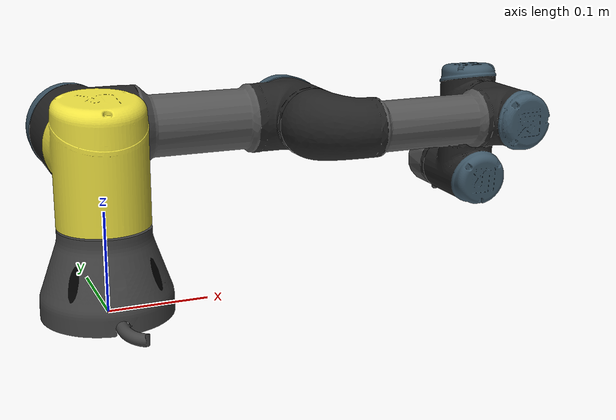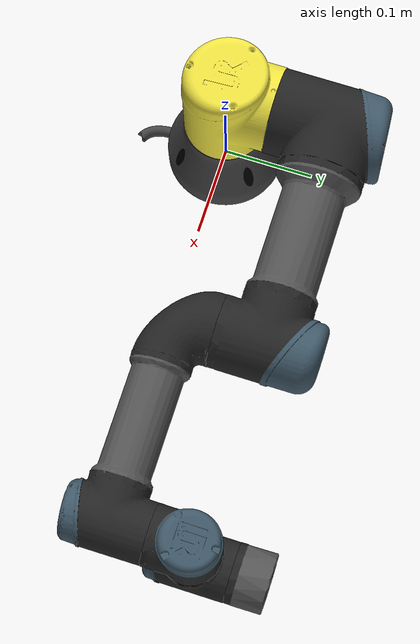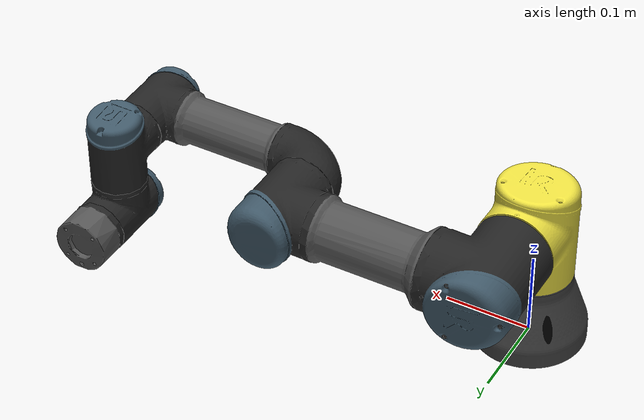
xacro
<?xml version="1.0"?>
<!-- Wrapper modeled after two_arm mutli_arm.urdf.xacro, generalized for any number of robots -->
<robot xmlns:xacro="http://www.ros.org/wiki/xacro" name="rabit_lab">
  <!-- Initial joint positions YAML used by the ros2_control macro -->
  <xacro:arg name="initial_positions_file" default="$(find rabit_lab)/config/initial_positions.yaml" />

  <!-- Import multi-robot URDF assembly for this package -->
  <xacro:include filename="$(find rabit_lab)/urdf/rabit_lab.urdf" />

  <!-- Import ros2_control macro Xacro placed alongside this wrapper in urdf/ -->
  <xacro:include filename="rabit_lab.ros2_control.xacro" />

  <!-- Optionally instantiate the control macro (kept commented like the reference): -->

</robot>

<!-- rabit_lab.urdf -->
<!-- |    This document was autogenerated by xacro from /home/roman/code/cps-gazebo-sim-2/src/rabit_lab/urdf/rabit_lab.urdf.xacro | -->
<!-- |    EDITING THIS FILE BY HAND IS NOT RECOMMENDED                                 | -->
<robot name="multi_arm">
  <!-- world reference frame -->
  <link name="world"/>
  <!-- Unified ros2_control for all arms (Ignition simulation) -->
  <ros2_control name="multi_arm_controller_manager" type="system">
    <hardware>
      <plugin>ign_ros2_control/IgnitionSystem</plugin>
    </hardware>
    <!-- arm_192_168_48_128 joints -->
    <joint name="arm_192_168_48_128_shoulder_pan_joint">
      <command_interface name="position"/>
      <command_interface name="velocity"/>
      <state_interface name="position">
        <param name="initial_value">0.0</param>
      </state_interface>
      <state_interface name="velocity"/>
      <state_interface name="effort"/>
    </joint>
    <joint name="arm_192_168_48_128_shoulder_lift_joint">
      <command_interface name="position"/>
      <command_interface name="velocity"/>
      <state_interface name="position">
        <param name="initial_value">0.0</param>
      </state_interface>
      <state_interface name="velocity"/>
      <state_interface name="effort"/>
    </joint>
    <joint name="arm_192_168_48_128_elbow_joint">
      <command_interface name="position"/>
      <command_interface name="velocity"/>
      <state_interface name="position">
        <param name="initial_value">0.0</param>
      </state_interface>
      <state_interface name="velocity"/>
      <state_interface name="effort"/>
    </joint>
    <joint name="arm_192_168_48_128_wrist_1_joint">
      <command_interface name="position"/>
      <command_interface name="velocity"/>
      <state_interface name="position">
        <param name="initial_value">0.0</param>
      </state_interface>
      <state_interface name="velocity"/>
      <state_interface name="effort"/>
    </joint>
    <joint name="arm_192_168_48_128_wrist_2_joint">
      <command_interface name="position"/>
      <command_interface name="velocity"/>
      <state_interface name="position">
        <param name="initial_value">0.0</param>
      </state_interface>
      <state_interface name="velocity"/>
      <state_interface name="effort"/>
    </joint>
    <joint name="arm_192_168_48_128_wrist_3_joint">
      <command_interface name="position"/>
      <command_interface name="velocity"/>
      <state_interface name="position">
        <param name="initial_value">0.0</param>
      </state_interface>
      <state_interface name="velocity"/>
      <state_interface name="effort"/>
    </joint>
  </ros2_control>
  <transmission name="arm_192_168_48_128_shoulder_pan_trans">
    <type>transmission_interface/SimpleTransmission</type>
    <joint name="arm_192_168_48_128_shoulder_pan_joint">
      <hardwareInterface>hardware_interface/PositionJointInterface</hardwareInterface>
    </joint>
    <actuator name="arm_192_168_48_128_shoulder_pan_motor">
      <mechanicalReduction>1</mechanicalReduction>
    </actuator>
  </transmission>
  <transmission name="arm_192_168_48_128_shoulder_lift_trans">
    <type>transmission_interface/SimpleTransmission</type>
    <joint name="arm_192_168_48_128_shoulder_lift_joint">
      <hardwareInterface>hardware_interface/PositionJointInterface</hardwareInterface>
    </joint>
    <actuator name="arm_192_168_48_128_shoulder_lift_motor">
      <mechanicalReduction>1</mechanicalReduction>
    </actuator>
  </transmission>
  <transmission name="arm_192_168_48_128_elbow_trans">
    <type>transmission_interface/SimpleTransmission</type>
    <joint name="arm_192_168_48_128_elbow_joint">
      <hardwareInterface>hardware_interface/PositionJointInterface</hardwareInterface>
    </joint>
    <actuator name="arm_192_168_48_128_elbow_motor">
      <mechanicalReduction>1</mechanicalReduction>
    </actuator>
  </transmission>
  <transmission name="arm_192_168_48_128_wrist_1_trans">
    <type>transmission_interface/SimpleTransmission</type>
    <joint name="arm_192_168_48_128_wrist_1_joint">
      <hardwareInterface>hardware_interface/PositionJointInterface</hardwareInterface>
    </joint>
    <actuator name="arm_192_168_48_128_wrist_1_motor">
      <mechanicalReduction>1</mechanicalReduction>
    </actuator>
  </transmission>
  <transmission name="arm_192_168_48_128_wrist_2_trans">
    <type>transmission_interface/SimpleTransmission</type>
    <joint name="arm_192_168_48_128_wrist_2_joint">
      <hardwareInterface>hardware_interface/PositionJointInterface</hardwareInterface>
    </joint>
    <actuator name="arm_192_168_48_128_wrist_2_motor">
      <mechanicalReduction>1</mechanicalReduction>
    </actuator>
  </transmission>
  <transmission name="arm_192_168_48_128_wrist_3_trans">
    <type>transmission_interface/SimpleTransmission</type>
    <joint name="arm_192_168_48_128_wrist_3_joint">
      <hardwareInterface>hardware_interface/PositionJointInterface</hardwareInterface>
    </joint>
    <actuator name="arm_192_168_48_128_wrist_3_motor">
      <mechanicalReduction>1</mechanicalReduction>
    </actuator>
  </transmission>
  <!-- Placeholder for ros2_control transmission which don't yet exist -->
  <!-- links -  main serial chain -->
  <link name="arm_192_168_48_128_base_link"/>
  <link name="arm_192_168_48_128_base_link_inertia">
    <visual>
      <origin rpy="0 0 3.141592653589793" xyz="0 0 0"/>
      <geometry>
        <mesh filename="file:///home/roman/code/cps-gazebo-sim-2/install/multi_ur_description/share/multi_ur_description/meshes/ur3/visual/base.dae"/>
      </geometry>
    </visual>
    <collision>
      <origin rpy="0 0 3.141592653589793" xyz="0 0 0"/>
      <geometry>
        <mesh filename="file:///home/roman/code/cps-gazebo-sim-2/install/multi_ur_description/share/multi_ur_description/meshes/ur3/collision/base.stl"/>
      </geometry>
    </collision>
    <inertial>
      <mass value="2.0"/>
      <origin rpy="0 0 0" xyz="0 0 0"/>
      <inertia ixx="0.0030531654454" ixy="0.0" ixz="0.0" iyy="0.0030531654454" iyz="0.0" izz="0.005625"/>
    </inertial>
  </link>
  <link name="arm_192_168_48_128_shoulder_link">
    <visual>
      <origin rpy="0 0 3.141592653589793" xyz="0 0 0"/>
      <geometry>
        <mesh filename="file:///home/roman/code/cps-gazebo-sim-2/install/multi_ur_description/share/multi_ur_description/meshes/ur3/visual/shoulder.dae"/>
      </geometry>
    </visual>
    <collision>
      <origin rpy="0 0 3.141592653589793" xyz="0 0 0"/>
      <geometry>
        <mesh filename="file:///home/roman/code/cps-gazebo-sim-2/install/multi_ur_description/share/multi_ur_description/meshes/ur3/collision/shoulder.stl"/>
      </geometry>
    </collision>
    <inertial>
      <mass value="2.0"/>
      <origin rpy="0 0 0" xyz="0 0 0"/>
      <inertia ixx="0.008093163429399999" ixy="0.0" ixz="0.0" iyy="0.008093163429399999" iyz="0.0" izz="0.005625"/>
    </inertial>
  </link>
  <link name="arm_192_168_48_128_upper_arm_link">
    <visual>
      <origin rpy="1.5707963267948966 0 -1.5707963267948966" xyz="0 0 0.1198"/>
      <geometry>
        <mesh filename="file:///home/roman/code/cps-gazebo-sim-2/install/multi_ur_description/share/multi_ur_description/meshes/ur3/visual/upperarm.dae"/>
      </geometry>
    </visual>
    <collision>
      <origin rpy="1.5707963267948966 0 -1.5707963267948966" xyz="0 0 0.1198"/>
      <geometry>
        <mesh filename="file:///home/roman/code/cps-gazebo-sim-2/install/multi_ur_description/share/multi_ur_description/meshes/ur3/collision/upperarm.stl"/>
      </geometry>
    </collision>
    <inertial>
      <mass value="3.42"/>
      <origin rpy="0 1.5707963267948966 0" xyz="-0.121825 0.0 0.12"/>
      <inertia ixx="0.021728483221103233" ixy="0.0" ixz="0.0" iyy="0.021728483221103233" iyz="0.0" izz="0.00961875"/>
    </inertial>
  </link>
  <link name="arm_192_168_48_128_forearm_link">
    <visual>
      <origin rpy="1.5707963267948966 0 -1.5707963267948966" xyz="0 0 0.0275"/>
      <geometry>
        <mesh filename="file:///home/roman/code/cps-gazebo-sim-2/install/multi_ur_description/share/multi_ur_description/meshes/ur3/visual/forearm.dae"/>
      </geometry>
    </visual>
    <collision>
      <origin rpy="1.5707963267948966 0 -1.5707963267948966" xyz="0 0 0.0275"/>
      <geometry>
        <mesh filename="file:///home/roman/code/cps-gazebo-sim-2/install/multi_ur_description/share/multi_ur_description/meshes/ur3/collision/forearm.stl"/>
      </geometry>
    </collision>
    <inertial>
      <mass value="1.26"/>
      <origin rpy="0 1.5707963267948966 0" xyz="-0.106625 0.0 0.0275"/>
      <inertia ixx="0.006546806443776375" ixy="0.0" ixz="0.0" iyy="0.006546806443776375" iyz="0.0" izz="0.00354375"/>
    </inertial>
  </link>
  <link name="arm_192_168_48_128_wrist_1_link">
    <visual>
      <origin rpy="1.5707963267948966 0 0" xyz="0 0 -0.085"/>
      <geometry>
        <mesh filename="file:///home/roman/code/cps-gazebo-sim-2/install/multi_ur_description/share/multi_ur_description/meshes/ur3/visual/wrist1.dae"/>
      </geometry>
    </visual>
    <collision>
      <origin rpy="1.5707963267948966 0 0" xyz="0 0 -0.085"/>
      <geometry>
        <mesh filename="file:///home/roman/code/cps-gazebo-sim-2/install/multi_ur_description/share/multi_ur_description/meshes/ur3/collision/wrist1.stl"/>
      </geometry>
    </collision>
    <inertial>
      <mass value="0.8"/>
      <origin rpy="0 0 0" xyz="0 0 0"/>
      <inertia ixx="0.0016106408557434" ixy="0.0" ixz="0.0" iyy="0.0016106408557434" iyz="0.0" izz="0.00225"/>
    </inertial>
  </link>
  <link name="arm_192_168_48_128_wrist_2_link">
    <visual>
      <origin rpy="0 0 0" xyz="0 0 -0.085"/>
      <geometry>
        <mesh filename="file:///home/roman/code/cps-gazebo-sim-2/install/multi_ur_description/share/multi_ur_description/meshes/ur3/visual/wrist2.dae"/>
      </geometry>
    </visual>
    <collision>
      <origin rpy="0 0 0" xyz="0 0 -0.085"/>
      <geometry>
        <mesh filename="file:///home/roman/code/cps-gazebo-sim-2/install/multi_ur_description/share/multi_ur_description/meshes/ur3/collision/wrist2.stl"/>
      </geometry>
    </collision>
    <inertial>
      <mass value="0.8"/>
      <origin rpy="0 0 0" xyz="0 0 0"/>
      <inertia ixx="0.0015721733711303997" ixy="0.0" ixz="0.0" iyy="0.0015721733711303997" iyz="0.0" izz="0.00225"/>
    </inertial>
  </link>
  <link name="arm_192_168_48_128_wrist_3_link">
    <visual>
      <origin rpy="1.5707963267948966 0 0" xyz="0 0 -0.082"/>
      <geometry>
        <mesh filename="file:///home/roman/code/cps-gazebo-sim-2/install/multi_ur_description/share/multi_ur_description/meshes/ur3/visual/wrist3.dae"/>
      </geometry>
    </visual>
    <collision>
      <origin rpy="1.5707963267948966 0 0" xyz="0 0 -0.082"/>
      <geometry>
        <mesh filename="file:///home/roman/code/cps-gazebo-sim-2/install/multi_ur_description/share/multi_ur_description/meshes/ur3/collision/wrist3.stl"/>
      </geometry>
    </collision>
    <inertial>
      <mass value="0.35"/>
      <origin rpy="0 0 0" xyz="0.0 0.0 -0.02"/>
      <inertia ixx="0.00013626661215999998" ixy="0.0" ixz="0.0" iyy="0.00013626661215999998" iyz="0.0" izz="0.0001792"/>
    </inertial>
  </link>
  <!-- base_joint fixes base_link to the environment -->
  <joint name="arm_192_168_48_128_base_joint" type="fixed">
    <origin rpy="0.0 0.0 0.0" xyz="0.0 0.0 0.0"/>
    <parent link="world"/>
    <child link="arm_192_168_48_128_base_link"/>
  </joint>
  <!-- joints - main serial chain -->
  <joint name="arm_192_168_48_128_base_link-base_link_inertia" type="fixed">
    <parent link="arm_192_168_48_128_base_link"/>
    <child link="arm_192_168_48_128_base_link_inertia"/>
    <origin rpy="0 0 3.141592653589793" xyz="0 0 0"/>
  </joint>
  <joint name="arm_192_168_48_128_shoulder_pan_joint" type="revolute">
    <parent link="arm_192_168_48_128_base_link_inertia"/>
    <child link="arm_192_168_48_128_shoulder_link"/>
    <origin rpy="0 0 0" xyz="0 0 0.1519"/>
    <axis xyz="0 0 1"/>
    <limit effort="56.0" lower="-6.283185307179586" upper="6.283185307179586" velocity="3.141592653589793"/>
    <dynamics damping="0" friction="0"/>
  </joint>
  <joint name="arm_192_168_48_128_shoulder_lift_joint" type="revolute">
    <parent link="arm_192_168_48_128_shoulder_link"/>
    <child link="arm_192_168_48_128_upper_arm_link"/>
    <origin rpy="1.570796327 0 0" xyz="0 0 0"/>
    <axis xyz="0 0 1"/>
    <limit effort="56.0" lower="-6.283185307179586" upper="6.283185307179586" velocity="3.141592653589793"/>
    <dynamics damping="0" friction="0"/>
  </joint>
  <joint name="arm_192_168_48_128_elbow_joint" type="revolute">
    <parent link="arm_192_168_48_128_upper_arm_link"/>
    <child link="arm_192_168_48_128_forearm_link"/>
    <origin rpy="0 0 0" xyz="-0.24365 0 0"/>
    <axis xyz="0 0 1"/>
    <limit effort="28.0" lower="-3.141592653589793" upper="3.141592653589793" velocity="3.141592653589793"/>
    <dynamics damping="0" friction="0"/>
  </joint>
  <joint name="arm_192_168_48_128_wrist_1_joint" type="revolute">
    <parent link="arm_192_168_48_128_forearm_link"/>
    <child link="arm_192_168_48_128_wrist_1_link"/>
    <origin rpy="0 0 0" xyz="-0.21325 0 0.11235"/>
    <axis xyz="0 0 1"/>
    <limit effort="12.0" lower="-6.283185307179586" upper="6.283185307179586" velocity="6.283185307179586"/>
    <dynamics damping="0" friction="0"/>
  </joint>
  <joint name="arm_192_168_48_128_wrist_2_joint" type="revolute">
    <parent link="arm_192_168_48_128_wrist_1_link"/>
    <child link="arm_192_168_48_128_wrist_2_link"/>
    <origin rpy="1.570796327 0 0" xyz="0 -0.08535 -1.750557762378351e-11"/>
    <axis xyz="0 0 1"/>
    <limit effort="12.0" lower="-6.283185307179586" upper="6.283185307179586" velocity="6.283185307179586"/>
    <dynamics damping="0" friction="0"/>
  </joint>
  <joint name="arm_192_168_48_128_wrist_3_joint" type="revolute">
    <parent link="arm_192_168_48_128_wrist_2_link"/>
    <child link="arm_192_168_48_128_wrist_3_link"/>
    <origin rpy="1.570796326589793 3.141592653589793 3.141592653589793" xyz="0 0.0819 -1.679797079540562e-11"/>
    <axis xyz="0 0 1"/>
    <limit effort="12.0" lower="-6.283185307179586" upper="6.283185307179586" velocity="6.283185307179586"/>
    <dynamics damping="0" friction="0"/>
  </joint>
  <link name="arm_192_168_48_128_ft_frame"/>
  <joint name="arm_192_168_48_128_wrist_3_link-ft_frame" type="fixed">
    <parent link="arm_192_168_48_128_wrist_3_link"/>
    <child link="arm_192_168_48_128_ft_frame"/>
    <origin rpy="3.141592653589793 0 0" xyz="0 0 0"/>
  </joint>
  <!-- ROS-Industrial 'base' frame - base_link to UR 'Base' Coordinates transform -->
  <link name="arm_192_168_48_128_base"/>
  <joint name="arm_192_168_48_128_base_link-base_fixed_joint" type="fixed">
    <origin rpy="0 0 3.141592653589793" xyz="0 0 0"/>
    <parent link="arm_192_168_48_128_base_link"/>
    <child link="arm_192_168_48_128_base"/>
  </joint>
  <!-- ROS-Industrial 'flange' frame - attachment point for EEF models -->
  <link name="arm_192_168_48_128_flange"/>
  <joint name="arm_192_168_48_128_wrist_3-flange" type="fixed">
    <parent link="arm_192_168_48_128_wrist_3_link"/>
    <child link="arm_192_168_48_128_flange"/>
    <origin rpy="0 -1.5707963267948966 -1.5707963267948966" xyz="0 0 0"/>
  </joint>
  <!-- ROS-Industrial 'tool0' frame - all-zeros tool frame -->
  <link name="arm_192_168_48_128_tool0"/>
  <joint name="arm_192_168_48_128_flange-tool0" type="fixed">
    <!-- default toolframe - X+ left, Y+ up, Z+ front -->
    <origin rpy="1.5707963267948966 0 1.5707963267948966" xyz="0 0 0"/>
    <parent link="arm_192_168_48_128_flange"/>
    <child link="arm_192_168_48_128_tool0"/>
  </joint>
  <gazebo>
    <plugin filename="libign_ros2_control-system.so" name="ign_ros2_control::IgnitionROS2ControlPlugin">
      <parameters>/home/roman/code/cps-gazebo-sim-2/install/rabit_lab/share/rabit_lab/config/controllers.yaml</parameters>
    </plugin>
  </gazebo>
</robot>
